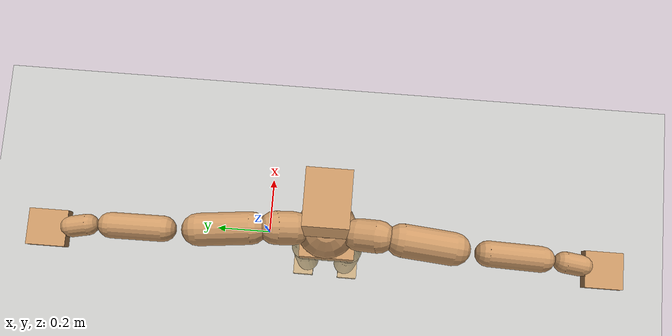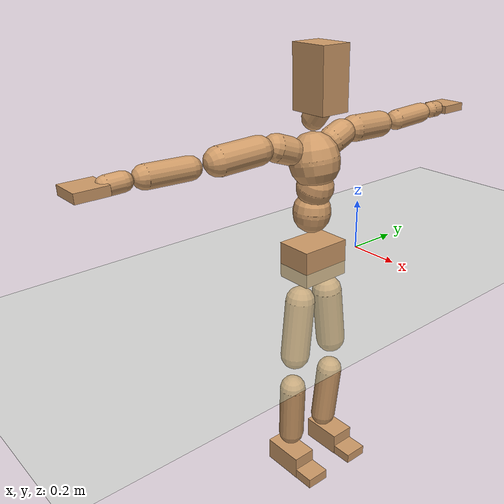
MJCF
<mujoco model="humanoid">
  <compiler coordinate="local" />
  <default>
    <joint damping="0.0" armature="0.01" stiffness="0.0" limited="true" />
    <geom conaffinity="1" condim="3" contype="7" margin="0.001" rgba="0.8 0.6 .4 1" />
  </default>
  <asset>
    <texture type="skybox" builtin="gradient" rgb1=".4 .5 .6" rgb2="0 0 0" width="100" height="100" />
    <texture builtin="flat" height="1278" mark="cross" markrgb="1 1 1" name="texgeom" random="0.01" rgb1="0.8 0.6 0.4" rgb2="0.8 0.6 0.4" type="cube" width="127" />
    <texture builtin="checker" height="100" name="texplane" rgb1="0 0 0" rgb2="0.8 0.8 0.8" type="2d" width="100" />
    <material name="MatPlane" reflectance="0.5" shininess="1" specular="1" texrepeat="60 60" texture="texplane" />
    <material name="geom" texture="texgeom" texuniform="true" />
  </asset>
  <worldbody>
    <light cutoff="100" diffuse="1 1 1" dir="-0 0 -1.3" directional="true" exponent="1" pos="0 0 1.3" specular=".1 .1 .1" />
    <geom conaffinity="1" condim="3" name="floor" pos="0 0 0" rgba="0.8 0.9 0.8 1" size="100 100 .2" type="plane" material="MatPlane" />
    <body name="Pelvis" pos="-0.003 -0.2238 0.0222">
      <freejoint name="Pelvis" />
      <geom type="box" pos="-0.0132 -0.0006 -0.0084" size="0.075 0.1025 0.0722" quat="1.0000 0.0000 0.0000 0.0000" density="1000" />
      <body name="L_Hip" pos="-0.0084 0.0646 -0.09">
        <joint name="L_Hip_x" type="hinge" pos="0 0 0" axis="1 0 0" stiffness="800" damping="80" armature="0.02" range="-180.0000 180.0000" />
        <joint name="L_Hip_y" type="hinge" pos="0 0 0" axis="0 1 0" stiffness="800" damping="80" armature="0.02" range="-180.0000 180.0000" />
        <joint name="L_Hip_z" type="hinge" pos="0 0 0" axis="0 0 1" stiffness="800" damping="80" armature="0.02" range="-180.0000 180.0000" />
        <geom type="capsule" contype="1" conaffinity="1" density="2040.816327" fromto="0.0004 0.0085 -0.0800 0.0018 0.0340 -0.3202" size="0.0602" />
        <body name="L_Knee" pos="0.0022 0.0425 -0.4002">
          <joint name="L_Knee_x" type="hinge" pos="0 0 0" axis="1 0 0" stiffness="800" damping="80" armature="0.02" range="-180.0000 180.0000" />
          <joint name="L_Knee_y" type="hinge" pos="0 0 0" axis="0 1 0" stiffness="800" damping="80" armature="0.02" range="-180.0000 180.0000" />
          <joint name="L_Knee_z" type="hinge" pos="0 0 0" axis="0 0 1" stiffness="800" damping="80" armature="0.02" range="-180.0000 180.0000" />
          <geom type="capsule" contype="1" conaffinity="1" density="1234.567901" fromto="-0.0085 -0.0030 -0.0847 -0.0338 -0.0121 -0.3386" size="0.0538" />
          <body name="L_Ankle" pos="-0.0423 -0.0151 -0.4233">
            <joint name="L_Ankle_x" type="hinge" pos="0 0 0" axis="1 0 0" stiffness="800" damping="80" armature="0.02" range="-180.0000 180.0000" />
            <joint name="L_Ankle_y" type="hinge" pos="0 0 0" axis="0 1 0" stiffness="800" damping="80" armature="0.02" range="-180.0000 180.0000" />
            <joint name="L_Ankle_z" type="hinge" pos="0 0 0" axis="0 0 1" stiffness="800" damping="80" armature="0.02" range="-180.0000 180.0000" />
            <geom type="box" pos="0.0257 0.0264 -0.0248" size="0.0878 0.0506 0.0474" quat="1.0000 0.0000 0.0000 0.0000" density="1000" />
            <body name="L_Toe" pos="0.1242 0.0301 -0.0581">
              <joint name="L_Toe_x" type="hinge" pos="0 0 0" axis="1 0 0" stiffness="500" damping="50" armature="0.02" range="-180.0000 180.0000" />
              <joint name="L_Toe_y" type="hinge" pos="0 0 0" axis="0 1 0" stiffness="500" damping="50" armature="0.02" range="-180.0000 180.0000" />
              <joint name="L_Toe_z" type="hinge" pos="0 0 0" axis="0 0 1" stiffness="500" damping="50" armature="0.02" range="-180.0000 180.0000" />
              <geom type="box" pos="0.0259 -0.0037 0.0067" size="0.0506 0.0487 0.0208" quat="1.0000 0.0000 0.0000 0.0000" density="1000" />
            </body>
          </body>
        </body>
      </body>
      <body name="R_Hip" pos="-0.0072 -0.0632 -0.0886">
        <joint name="R_Hip_x" type="hinge" pos="0 0 0" axis="1 0 0" stiffness="800" damping="80" armature="0.02" range="-180.0000 180.0000" />
        <joint name="R_Hip_y" type="hinge" pos="0 0 0" axis="0 1 0" stiffness="800" damping="80" armature="0.02" range="-180.0000 180.0000" />
        <joint name="R_Hip_z" type="hinge" pos="0 0 0" axis="0 0 1" stiffness="800" damping="80" armature="0.02" range="-180.0000 180.0000" />
        <geom type="capsule" contype="1" conaffinity="1" density="2040.816327" fromto="-0.0009 -0.0090 -0.0815 -0.0034 -0.0359 -0.3259" size="0.0589" />
        <body name="R_Knee" pos="-0.0043 -0.0449 -0.4074">
          <joint name="R_Knee_x" type="hinge" pos="0 0 0" axis="1 0 0" stiffness="800" damping="80" armature="0.02" range="-180.0000 180.0000" />
          <joint name="R_Knee_y" type="hinge" pos="0 0 0" axis="0 1 0" stiffness="800" damping="80" armature="0.02" range="-180.0000 180.0000" />
          <joint name="R_Knee_z" type="hinge" pos="0 0 0" axis="0 0 1" stiffness="800" damping="80" armature="0.02" range="-180.0000 180.0000" />
          <geom type="capsule" contype="1" conaffinity="1" density="1234.567901" fromto="-0.0081 0.0035 -0.0846 -0.0326 0.0139 -0.3385" size="0.0538" />
          <body name="R_Ankle" pos="-0.0407 0.0174 -0.4231">
            <joint name="R_Ankle_x" type="hinge" pos="0 0 0" axis="1 0 0" stiffness="800" damping="80" armature="0.02" range="-180.0000 180.0000" />
            <joint name="R_Ankle_y" type="hinge" pos="0 0 0" axis="0 1 0" stiffness="800" damping="80" armature="0.02" range="-180.0000 180.0000" />
            <joint name="R_Ankle_z" type="hinge" pos="0 0 0" axis="0 0 1" stiffness="800" damping="80" armature="0.02" range="-180.0000 180.0000" />
            <geom type="box" pos="0.0273 -0.0233 -0.0184" size="0.09 0.0493 0.0492" quat="1.0000 0.0000 0.0000 0.0000" density="1000" />
            <body name="R_Toe" pos="0.1286 -0.0272 -0.0511">
              <joint name="R_Toe_x" type="hinge" pos="0 0 0" axis="1 0 0" stiffness="500" damping="50" armature="0.02" range="-180.0000 180.0000" />
              <joint name="R_Toe_y" type="hinge" pos="0 0 0" axis="0 1 0" stiffness="500" damping="50" armature="0.02" range="-180.0000 180.0000" />
              <joint name="R_Toe_z" type="hinge" pos="0 0 0" axis="0 0 1" stiffness="500" damping="50" armature="0.02" range="-180.0000 180.0000" />
              <geom type="box" pos="0.0249 0.0039 0.0051" size="0.0516 0.0485 0.0216" quat="1.0000 0.0000 0.0000 0.0000" density="1000" />
            </body>
          </body>
        </body>
      </body>
      <body name="Torso" pos="-0.0258 -0.0028 0.1101">
        <joint name="Torso_x" type="hinge" pos="0 0 0" axis="1 0 0" stiffness="1000" damping="100" armature="0.02" range="-180.0000 180.0000" />
        <joint name="Torso_y" type="hinge" pos="0 0 0" axis="0 1 0" stiffness="1000" damping="100" armature="0.02" range="-180.0000 180.0000" />
        <joint name="Torso_z" type="hinge" pos="0 0 0" axis="0 0 1" stiffness="1000" damping="100" armature="0.02" range="-180.0000 180.0000" />
        <geom type="capsule" contype="1" conaffinity="1" density="2040.816327" fromto="0.0023 0.0032 0.0639 0.0029 0.0039 0.0780" size="0.0736" />
        <body name="Spine" pos="0.0052 0.0072 0.1419">
          <joint name="Spine_x" type="hinge" pos="0 0 0" axis="1 0 0" stiffness="1000" damping="100" armature="0.02" range="-180.0000 180.0000" />
          <joint name="Spine_y" type="hinge" pos="0 0 0" axis="0 1 0" stiffness="1000" damping="100" armature="0.02" range="-180.0000 180.0000" />
          <joint name="Spine_z" type="hinge" pos="0 0 0" axis="0 0 1" stiffness="1000" damping="100" armature="0.02" range="-180.0000 180.0000" />
          <geom type="capsule" contype="1" conaffinity="1" density="2040.816327" fromto="0.0087 0.0005 0.0247 0.0106 0.0006 0.0301" size="0.0716" />
          <body name="Chest" pos="0.0193 0.0011 0.0548">
            <joint name="Chest_x" type="hinge" pos="0 0 0" axis="1 0 0" stiffness="1000" damping="100" armature="0.02" range="-180.0000 180.0000" />
            <joint name="Chest_y" type="hinge" pos="0 0 0" axis="0 1 0" stiffness="1000" damping="100" armature="0.02" range="-180.0000 180.0000" />
            <joint name="Chest_z" type="hinge" pos="0 0 0" axis="0 0 1" stiffness="1000" damping="100" armature="0.02" range="-180.0000 180.0000" />
            <geom type="capsule" contype="1" conaffinity="1" density="2040.816327" fromto="-0.0131 -0.0013 0.0678 -0.0160 -0.0016 0.0829" size="0.0967" />
            <body name="Neck" pos="-0.0288 -0.0045 0.2139">
              <joint name="Neck_x" type="hinge" pos="0 0 0" axis="1 0 0" stiffness="500" damping="50" armature="0.02" range="-180.0000 180.0000" />
              <joint name="Neck_y" type="hinge" pos="0 0 0" axis="0 1 0" stiffness="500" damping="50" armature="0.02" range="-180.0000 180.0000" />
              <joint name="Neck_z" type="hinge" pos="0 0 0" axis="0 0 1" stiffness="500" damping="50" armature="0.02" range="-180.0000 180.0000" />
              <geom type="capsule" contype="1" conaffinity="1" density="1000" fromto="0.0104 0.0015 0.0139 0.0418 0.0061 0.0558" size="0.0443" />
              <body name="Head" pos="0.0522 0.0076 0.0697">
                <joint name="Head_x" type="hinge" pos="0 0 0" axis="1 0 0" stiffness="500" damping="50" armature="0.02" range="-180.0000 180.0000" />
                <joint name="Head_y" type="hinge" pos="0 0 0" axis="0 1 0" stiffness="500" damping="50" armature="0.02" range="-180.0000 180.0000" />
                <joint name="Head_z" type="hinge" pos="0 0 0" axis="0 0 1" stiffness="500" damping="50" armature="0.02" range="-180.0000 180.0000" />
                <geom type="box" pos="-0.0109 -0.0039 0.0875" size="0.0764 0.0608 0.1147" quat="1.0000 0.0000 0.0000 0.0000" density="1000" />

              </body>
            </body>
            <body name="L_Thorax" pos="-0.0271 0.0793 0.1211">
              <joint name="L_Thorax_x" type="hinge" pos="0 0 0" axis="1 0 0" stiffness="500" damping="50" armature="0.02" range="-180.0000 180.0000" />
              <joint name="L_Thorax_y" type="hinge" pos="0 0 0" axis="0 1 0" stiffness="500" damping="50" armature="0.02" range="-180.0000 180.0000" />
              <joint name="L_Thorax_z" type="hinge" pos="0 0 0" axis="0 0 1" stiffness="500" damping="50" armature="0.02" range="-180.0000 180.0000" />
              <geom type="capsule" contype="1" conaffinity="1" density="1000" fromto="-0.0017 0.0189 0.0063 -0.0069 0.0757 0.0253" size="0.0524" />
              <body name="L_Shoulder" pos="-0.0086 0.0946 0.0317">
                <joint name="L_Shoulder_x" type="hinge" pos="0 0 0" axis="1 0 0" stiffness="500" damping="50" armature="0.02" range="-720.0000 720.0000" />
                <joint name="L_Shoulder_y" type="hinge" pos="0 0 0" axis="0 1 0" stiffness="500" damping="50" armature="0.02" range="-720.0000 720.0000" />
                <joint name="L_Shoulder_z" type="hinge" pos="0 0 0" axis="0 0 1" stiffness="500" damping="50" armature="0.02" range="-720.0000 720.0000" />
                <geom type="capsule" contype="1" conaffinity="1" density="1000" fromto="-0.0054 0.0546 -0.0035 -0.0215 0.2183 -0.0140" size="0.0511" />
                <body name="L_Elbow" pos="-0.0269 0.2729 -0.0175">
                  <joint name="L_Elbow_x" type="hinge" pos="0 0 0" axis="1 0 0" stiffness="500" damping="50" armature="0.02" range="-720.0000 720.0000" />
                  <joint name="L_Elbow_y" type="hinge" pos="0 0 0" axis="0 1 0" stiffness="500" damping="50" armature="0.02" range="-720.0000 720.0000" />
                  <joint name="L_Elbow_z" type="hinge" pos="0 0 0" axis="0 0 1" stiffness="500" damping="50" armature="0.02" range="-720.0000 720.0000" />
                  <geom type="capsule" contype="1" conaffinity="1" density="1000" fromto="-0.0005 0.0531 0.0020 -0.0022 0.2124 0.0078" size="0.0404" />
                  <body name="L_Wrist" pos="-0.0027 0.2655 0.0098">
                    <joint name="L_Wrist_x" type="hinge" pos="0 0 0" axis="1 0 0" stiffness="300" damping="30" armature="0.02" range="-180.0000 180.0000" />
                    <joint name="L_Wrist_y" type="hinge" pos="0 0 0" axis="0 1 0" stiffness="300" damping="30" armature="0.02" range="-180.0000 180.0000" />
                    <joint name="L_Wrist_z" type="hinge" pos="0 0 0" axis="0 0 1" stiffness="300" damping="30" armature="0.02" range="-180.0000 180.0000" />
                    <geom type="capsule" contype="1" conaffinity="1" density="1000" fromto="-0.0033 0.0175 -0.0014 -0.0132 0.0701 -0.0058" size="0.0328" />
                    <body name="L_Hand" pos="-0.0165 0.0876 -0.0072">
                      <joint name="L_Hand_x" type="hinge" pos="0 0 0" axis="1 0 0" stiffness="300" damping="30" armature="0.02" range="-180.0000 180.0000" />
                      <joint name="L_Hand_y" type="hinge" pos="0 0 0" axis="0 1 0" stiffness="300" damping="30" armature="0.02" range="-180.0000 180.0000" />
                      <joint name="L_Hand_z" type="hinge" pos="0 0 0" axis="0 0 1" stiffness="300" damping="30" armature="0.02" range="-180.0000 180.0000" />
                      <geom type="box" pos="-0.0052 0.0509 0.0011" size="0.0556 0.0601 0.0162" quat="1.0000 0.0000 0.0000 0.0000" density="1000" />
                    </body>
                  </body>
                </body>
              </body>
            </body>
            <body name="R_Thorax" pos="-0.0314 -0.0834 0.1173">
              <joint name="R_Thorax_x" type="hinge" pos="0 0 0" axis="1 0 0" stiffness="500" damping="50" armature="0.02" range="-180.0000 180.0000" />
              <joint name="R_Thorax_y" type="hinge" pos="0 0 0" axis="0 1 0" stiffness="500" damping="50" armature="0.02" range="-180.0000 180.0000" />
              <joint name="R_Thorax_z" type="hinge" pos="0 0 0" axis="0 0 1" stiffness="500" damping="50" armature="0.02" range="-180.0000 180.0000" />
              <geom type="capsule" contype="1" conaffinity="1" density="1000" fromto="-0.0015 -0.0200 0.0069 -0.0059 -0.0801 0.0278" size="0.0513" />
              <body name="R_Shoulder" pos="-0.0074 -0.1001 0.0347">
                <joint name="R_Shoulder_x" type="hinge" pos="0 0 0" axis="1 0 0" stiffness="500" damping="50" armature="0.02" range="-720.0000 720.0000" />
                <joint name="R_Shoulder_y" type="hinge" pos="0 0 0" axis="0 1 0" stiffness="500" damping="50" armature="0.02" range="-720.0000 720.0000" />
                <joint name="R_Shoulder_z" type="hinge" pos="0 0 0" axis="0 0 1" stiffness="500" damping="50" armature="0.02" range="-720.0000 720.0000" />
                <geom type="capsule" contype="1" conaffinity="1" density="1000" fromto="-0.0043 -0.0530 -0.0033 -0.0172 -0.2121 -0.0134" size="0.0524" />
                <body name="R_Elbow" pos="-0.0215 -0.2651 -0.0167">
                  <joint name="R_Elbow_x" type="hinge" pos="0 0 0" axis="1 0 0" stiffness="500" damping="50" armature="0.02" range="-720.0000 720.0000" />
                  <joint name="R_Elbow_y" type="hinge" pos="0 0 0" axis="0 1 0" stiffness="500" damping="50" armature="0.02" range="-720.0000 720.0000" />
                  <joint name="R_Elbow_z" type="hinge" pos="0 0 0" axis="0 0 1" stiffness="500" damping="50" armature="0.02" range="-720.0000 720.0000" />
                  <geom type="capsule" contype="1" conaffinity="1" density="1000" fromto="-0.0016 -0.0540 0.0013 -0.0064 -0.2159 0.0052" size="0.0407" />
                  <body name="R_Wrist" pos="-0.008 -0.2699 0.0066">
                    <joint name="R_Wrist_x" type="hinge" pos="0 0 0" axis="1 0 0" stiffness="300" damping="30" armature="0.02" range="-180.0000 180.0000" />
                    <joint name="R_Wrist_y" type="hinge" pos="0 0 0" axis="0 1 0" stiffness="300" damping="30" armature="0.02" range="-180.0000 180.0000" />
                    <joint name="R_Wrist_z" type="hinge" pos="0 0 0" axis="0 0 1" stiffness="300" damping="30" armature="0.02" range="-180.0000 180.0000" />
                    <geom type="capsule" contype="1" conaffinity="1" density="1000" fromto="-0.0020 -0.0175 -0.0010 -0.0081 -0.0699 -0.0042" size="0.0333" />
                    <body name="R_Hand" pos="-0.0101 -0.0873 -0.0052">
                      <joint name="R_Hand_x" type="hinge" pos="0 0 0" axis="1 0 0" stiffness="300" damping="30" armature="0.02" range="-180.0000 180.0000" />
                      <joint name="R_Hand_y" type="hinge" pos="0 0 0" axis="0 1 0" stiffness="300" damping="30" armature="0.02" range="-180.0000 180.0000" />
                      <joint name="R_Hand_z" type="hinge" pos="0 0 0" axis="0 0 1" stiffness="300" damping="30" armature="0.02" range="-180.0000 180.0000" />
                      <geom type="box" pos="-0.0078 -0.0472 -0.0008" size="0.056 0.058 0.0167" quat="1.0000 0.0000 0.0000 0.0000" density="1000" />
                    </body>
                  </body>
                </body>
              </body>
            </body>
          </body>
        </body>
      </body>
    </body>
  </worldbody>
  <actuator>
    <motor name="L_Hip_x" joint="L_Hip_x" gear="500" />
    <motor name="L_Hip_y" joint="L_Hip_y" gear="500" />
    <motor name="L_Hip_z" joint="L_Hip_z" gear="500" />
    <motor name="L_Knee_x" joint="L_Knee_x" gear="500" />
    <motor name="L_Knee_y" joint="L_Knee_y" gear="500" />
    <motor name="L_Knee_z" joint="L_Knee_z" gear="500" />
    <motor name="L_Ankle_x" joint="L_Ankle_x" gear="500" />
    <motor name="L_Ankle_y" joint="L_Ankle_y" gear="500" />
    <motor name="L_Ankle_z" joint="L_Ankle_z" gear="500" />
    <motor name="L_Toe_x" joint="L_Toe_x" gear="500" />
    <motor name="L_Toe_y" joint="L_Toe_y" gear="500" />
    <motor name="L_Toe_z" joint="L_Toe_z" gear="500" />
    <motor name="R_Hip_x" joint="R_Hip_x" gear="500" />
    <motor name="R_Hip_y" joint="R_Hip_y" gear="500" />
    <motor name="R_Hip_z" joint="R_Hip_z" gear="500" />
    <motor name="R_Knee_x" joint="R_Knee_x" gear="500" />
    <motor name="R_Knee_y" joint="R_Knee_y" gear="500" />
    <motor name="R_Knee_z" joint="R_Knee_z" gear="500" />
    <motor name="R_Ankle_x" joint="R_Ankle_x" gear="500" />
    <motor name="R_Ankle_y" joint="R_Ankle_y" gear="500" />
    <motor name="R_Ankle_z" joint="R_Ankle_z" gear="500" />
    <motor name="R_Toe_x" joint="R_Toe_x" gear="500" />
    <motor name="R_Toe_y" joint="R_Toe_y" gear="500" />
    <motor name="R_Toe_z" joint="R_Toe_z" gear="500" />
    <motor name="Torso_x" joint="Torso_x" gear="500" />
    <motor name="Torso_y" joint="Torso_y" gear="500" />
    <motor name="Torso_z" joint="Torso_z" gear="500" />
    <motor name="Spine_x" joint="Spine_x" gear="500" />
    <motor name="Spine_y" joint="Spine_y" gear="500" />
    <motor name="Spine_z" joint="Spine_z" gear="500" />
    <motor name="Chest_x" joint="Chest_x" gear="500" />
    <motor name="Chest_y" joint="Chest_y" gear="500" />
    <motor name="Chest_z" joint="Chest_z" gear="500" />
    <motor name="Neck_x" joint="Neck_x" gear="500" />
    <motor name="Neck_y" joint="Neck_y" gear="500" />
    <motor name="Neck_z" joint="Neck_z" gear="500" />
    <motor name="Head_x" joint="Head_x" gear="500" />
    <motor name="Head_y" joint="Head_y" gear="500" />
    <motor name="Head_z" joint="Head_z" gear="500" />
    <motor name="L_Thorax_x" joint="L_Thorax_x" gear="500" />
    <motor name="L_Thorax_y" joint="L_Thorax_y" gear="500" />
    <motor name="L_Thorax_z" joint="L_Thorax_z" gear="500" />
    <motor name="L_Shoulder_x" joint="L_Shoulder_x" gear="500" />
    <motor name="L_Shoulder_y" joint="L_Shoulder_y" gear="500" />
    <motor name="L_Shoulder_z" joint="L_Shoulder_z" gear="500" />
    <motor name="L_Elbow_x" joint="L_Elbow_x" gear="500" />
    <motor name="L_Elbow_y" joint="L_Elbow_y" gear="500" />
    <motor name="L_Elbow_z" joint="L_Elbow_z" gear="500" />
    <motor name="L_Wrist_x" joint="L_Wrist_x" gear="500" />
    <motor name="L_Wrist_y" joint="L_Wrist_y" gear="500" />
    <motor name="L_Wrist_z" joint="L_Wrist_z" gear="500" />
    <motor name="L_Hand_x" joint="L_Hand_x" gear="500" />
    <motor name="L_Hand_y" joint="L_Hand_y" gear="500" />
    <motor name="L_Hand_z" joint="L_Hand_z" gear="500" />
    <motor name="R_Thorax_x" joint="R_Thorax_x" gear="500" />
    <motor name="R_Thorax_y" joint="R_Thorax_y" gear="500" />
    <motor name="R_Thorax_z" joint="R_Thorax_z" gear="500" />
    <motor name="R_Shoulder_x" joint="R_Shoulder_x" gear="500" />
    <motor name="R_Shoulder_y" joint="R_Shoulder_y" gear="500" />
    <motor name="R_Shoulder_z" joint="R_Shoulder_z" gear="500" />
    <motor name="R_Elbow_x" joint="R_Elbow_x" gear="500" />
    <motor name="R_Elbow_y" joint="R_Elbow_y" gear="500" />
    <motor name="R_Elbow_z" joint="R_Elbow_z" gear="500" />
    <motor name="R_Wrist_x" joint="R_Wrist_x" gear="500" />
    <motor name="R_Wrist_y" joint="R_Wrist_y" gear="500" />
    <motor name="R_Wrist_z" joint="R_Wrist_z" gear="500" />
    <motor name="R_Hand_x" joint="R_Hand_x" gear="500" />
    <motor name="R_Hand_y" joint="R_Hand_y" gear="500" />
    <motor name="R_Hand_z" joint="R_Hand_z" gear="500" />
  </actuator>
  <contact>
    <exclude body1="Torso" body2="Chest" />
    <exclude body1="Head" body2="Chest" />
    <exclude body1="R_Knee" body2="R_Toe" />
    <exclude body1="R_Knee" body2="L_Ankle" />
    <exclude body1="R_Knee" body2="L_Toe" />
    <exclude body1="L_Knee" body2="L_Toe" />
    <exclude body1="L_Knee" body2="R_Ankle" />
    <exclude body1="L_Knee" body2="R_Toe" />
    <exclude body1="L_Shoulder" body2="Chest" />
    <exclude body1="R_Shoulder" body2="Chest" />
  </contact>
  <sensor />
  <size njmax="700" nconmax="700" />
</mujoco>
